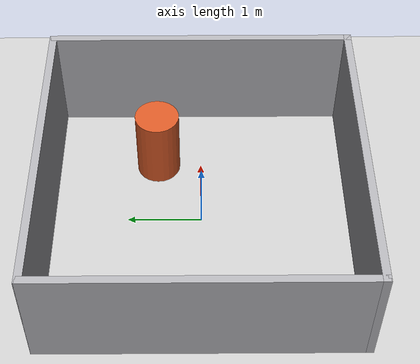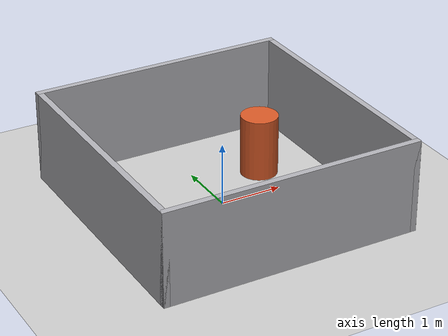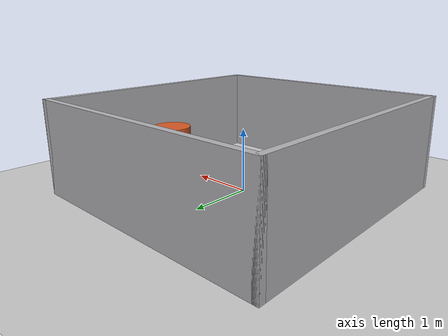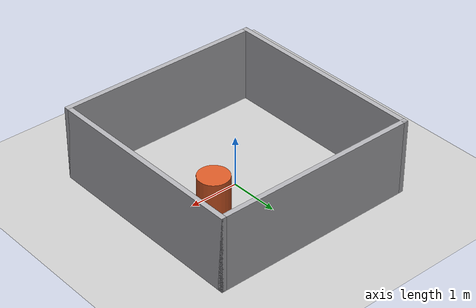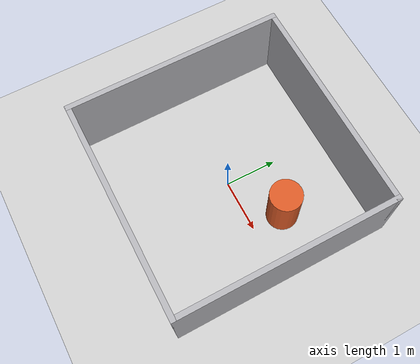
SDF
<sdf version="1.7">
 <world name="test_room">
  <physics type="ode"><max_step_size>0.01</max_step_size></physics>
  <light type="directional" name="sun">
   <pose>0 0 10 0 0 0</pose>
   <diffuse>0.8 0.8 0.8 1</diffuse>
   <specular>0.2 0.2 0.2 1</specular>
   <attenuation>
    <range>1000</range>
    <constant>0.9</constant>
    <linear>0.01</linear>
    <quadratic>0.001</quadratic>
   </attenuation>
   <direction>-0.5 0.1 -0.9</direction>
  </light>
  <model name="ground_plane">
   <static>true</static>
   <link name="link">
    <collision name="collision"><geometry><plane><normal>0 0 1</normal></plane></geometry></collision>
    <visual name="visual">
     <geometry><plane><normal>0 0 1</normal><size>100 100</size></plane></geometry>
     <material>
      <ambient>0.8 0.8 0.8 1</ambient>
      <diffuse>0.8 0.8 0.8 1</diffuse>
      <specular>0.8 0.8 0.8 1</specular>
     </material>
    </visual>
   </link>
  </model>
  <model name="wall_north">
   <static>true</static>
   <pose>0 2.05 0.75 0 0 0</pose>
   <link name="link">
    <collision name="collision"><geometry><box><size>4.2 0.1 1.5</size></box></geometry></collision>
    <visual name="visual">
     <geometry><box><size>4.2 0.1 1.5</size></box></geometry>
     <material><ambient>0.7 0.7 0.72 1</ambient><diffuse>0.7 0.7 0.72 1</diffuse></material>
    </visual>
   </link>
  </model>
  <model name="wall_south">
   <static>true</static>
   <pose>0 -2.05 0.75 0 0 0</pose>
   <link name="link">
    <collision name="collision"><geometry><box><size>4.2 0.1 1.5</size></box></geometry></collision>
    <visual name="visual">
     <geometry><box><size>4.2 0.1 1.5</size></box></geometry>
     <material><ambient>0.7 0.7 0.72 1</ambient><diffuse>0.7 0.7 0.72 1</diffuse></material>
    </visual>
   </link>
  </model>
  <model name="wall_east">
   <static>true</static>
   <pose>2.05 0 0.75 0 0 0</pose>
   <link name="link">
    <collision name="collision"><geometry><box><size>0.1 4.2 1.5</size></box></geometry></collision>
    <visual name="visual">
     <geometry><box><size>0.1 4.2 1.5</size></box></geometry>
     <material><ambient>0.7 0.7 0.72 1</ambient><diffuse>0.7 0.7 0.72 1</diffuse></material>
    </visual>
   </link>
  </model>
  <model name="wall_west">
   <static>true</static>
   <pose>-2.05 0 0.75 0 0 0</pose>
   <link name="link">
    <collision name="collision"><geometry><box><size>0.1 4.2 1.5</size></box></geometry></collision>
    <visual name="visual">
     <geometry><box><size>0.1 4.2 1.5</size></box></geometry>
     <material><ambient>0.7 0.7 0.72 1</ambient><diffuse>0.7 0.7 0.72 1</diffuse></material>
    </visual>
   </link>
  </model>
  <model name="obstacle">
   <static>true</static>
   <pose>1.0 0.6 0.5 0 0 0</pose>
   <link name="link">
    <collision name="collision">
     <geometry><cylinder><radius>0.3</radius><length>1.0</length></cylinder></geometry>
    </collision>
    <visual name="visual">
     <geometry><cylinder><radius>0.3</radius><length>1.0</length></cylinder></geometry>
     <material><ambient>0.85 0.35 0.15 1</ambient><diffuse>0.85 0.35 0.15 1</diffuse></material>
    </visual>
   </link>
  </model>
 </world>
</sdf>
